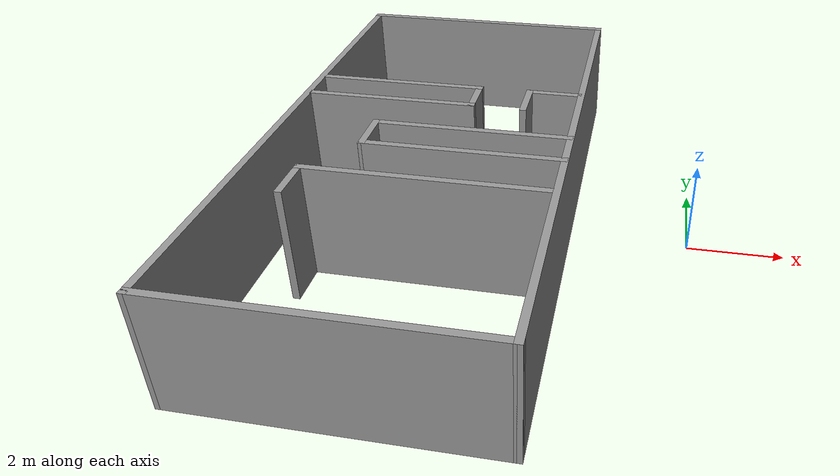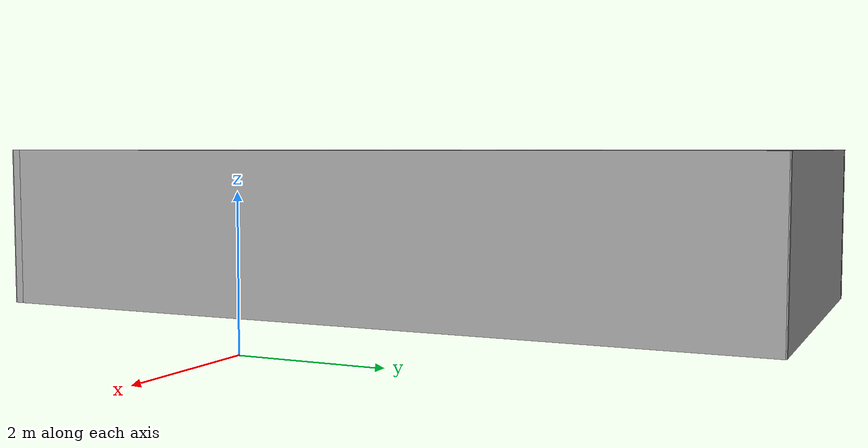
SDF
<?xml version='1.0'?>
<sdf version='1.7'>
  <model name='R2'>
    <pose>-4.38324 -0.010708 0 0 -0 0</pose>
    <link name='Wall_11'>
      <collision name='Wall_11_Collision'>
        <geometry>
          <box>
            <size>1.01745 0.15 2.5</size>
          </box>
        </geometry>
        <pose>0 0 1.25 0 -0 0</pose>
      </collision>
      <visual name='Wall_11_Visual'>
        <pose>0 0 1.25 0 -0 0</pose>
        <geometry>
          <box>
            <size>1.01745 0.15 2.5</size>
          </box>
        </geometry>
        <material>
          <script>
            <uri>file://media/materials/scripts/gazebo.material</uri>
            <name>Gazebo/Grey</name>
          </script>
          <ambient>1 1 1 1</ambient>
        </material>
        <meta>
          <layer>0</layer>
        </meta>
      </visual>
      <pose>-0.536934 1.48475 0 0 -0 -1.5708</pose>
    </link>
    <link name='Wall_15'>
      <collision name='Wall_15_Collision'>
        <geometry>
          <box>
            <size>3.8 0.15 2.5</size>
          </box>
        </geometry>
        <pose>0 0 1.25 0 -0 0</pose>
      </collision>
      <visual name='Wall_15_Visual'>
        <pose>0 0 1.25 0 -0 0</pose>
        <geometry>
          <box>
            <size>3.8 0.15 2.5</size>
          </box>
        </geometry>
        <material>
          <script>
            <uri>file://media/materials/scripts/gazebo.material</uri>
            <name>Gazebo/Grey</name>
          </script>
          <ambient>1 1 1 1</ambient>
        </material>
        <meta>
          <layer>0</layer>
        </meta>
      </visual>
      <pose>-2.36193 1.05102 0 0 -0 3.14159</pose>
    </link>
    <link name='Wall_18'>
      <collision name='Wall_18_Collision'>
        <geometry>
          <box>
            <size>1.02529 0.15 2.5</size>
          </box>
        </geometry>
        <pose>0 0 1.25 0 -0 0</pose>
      </collision>
      <visual name='Wall_18_Visual'>
        <pose>0 0 1.25 0 -0 0</pose>
        <geometry>
          <box>
            <size>1.02529 0.15 2.5</size>
          </box>
        </geometry>
        <material>
          <script>
            <uri>file://media/materials/scripts/gazebo.material</uri>
            <name>Gazebo/Grey</name>
          </script>
          <ambient>1 1 1 1</ambient>
        </material>
        <meta>
          <layer>0</layer>
        </meta>
      </visual>
      <pose>0.61657 1.48341 0 0 -0 -1.5708</pose>
    </link>
    <link name='Wall_20'>
      <collision name='Wall_20_Collision'>
        <geometry>
          <box>
            <size>1.25 0.15 2.5</size>
          </box>
        </geometry>
        <pose>0 0 1.25 0 -0 0</pose>
      </collision>
      <visual name='Wall_20_Visual'>
        <pose>0 0 1.25 0 -0 0</pose>
        <geometry>
          <box>
            <size>1.25 0.15 2.5</size>
          </box>
        </geometry>
        <material>
          <script>
            <uri>file://media/materials/scripts/gazebo.material</uri>
            <name>Gazebo/Grey</name>
          </script>
          <ambient>1 1 1 1</ambient>
        </material>
        <meta>
          <layer>0</layer>
        </meta>
      </visual>
      <pose>1.16657 1.92358 0 0 -0 0</pose>
    </link>
    <link name='Wall_23'>
      <collision name='Wall_23_Collision'>
        <geometry>
          <box>
            <size>1.01538 0.15 2.5</size>
          </box>
        </geometry>
        <pose>0 0 1.25 0 -0 0</pose>
      </collision>
      <visual name='Wall_23_Visual'>
        <pose>0 0 1.25 0 -0 0</pose>
        <geometry>
          <box>
            <size>1.01538 0.15 2.5</size>
          </box>
        </geometry>
        <material>
          <script>
            <uri>file://media/materials/scripts/gazebo.material</uri>
            <name>Gazebo/Grey</name>
          </script>
          <ambient>1 1 1 1</ambient>
        </material>
        <meta>
          <layer>0</layer>
        </meta>
      </visual>
      <pose>-3.20366 -2.53289 0 0 -0 -1.5708</pose>
    </link>
    <link name='Wall_25'>
      <collision name='Wall_25_Collision'>
        <geometry>
          <box>
            <size>5 0.15 2.5</size>
          </box>
        </geometry>
        <pose>0 0 1.25 0 -0 0</pose>
      </collision>
      <visual name='Wall_25_Visual'>
        <pose>0 0 1.25 0 -0 0</pose>
        <geometry>
          <box>
            <size>5 0.15 2.5</size>
          </box>
        </geometry>
        <material>
          <script>
            <uri>file://media/materials/scripts/gazebo.material</uri>
            <name>Gazebo/Grey</name>
          </script>
          <ambient>1 1 1 1</ambient>
        </material>
        <meta>
          <layer>0</layer>
        </meta>
      </visual>
      <pose>-0.778656 -2.10327 0 0 -0 0</pose>
    </link>
    <link name='Wall_28'>
      <collision name='Wall_28_Collision'>
        <geometry>
          <box>
            <size>1.03917 0.15 2.5</size>
          </box>
        </geometry>
        <pose>0 0 1.25 0 -0 0</pose>
      </collision>
      <visual name='Wall_28_Visual'>
        <pose>0 0 1.25 0 -0 0</pose>
        <geometry>
          <box>
            <size>1.03917 0.15 2.5</size>
          </box>
        </geometry>
        <material>
          <script>
            <uri>file://media/materials/scripts/gazebo.material</uri>
            <name>Gazebo/Grey</name>
          </script>
          <ambient>1 1 1 1</ambient>
        </material>
        <meta>
          <layer>0</layer>
        </meta>
      </visual>
      <pose>-2.33554 -0.518695 0 0 -0 -1.56279</pose>
    </link>
    <link name='Wall_3'>
      <collision name='Wall_3_Collision'>
        <geometry>
          <box>
            <size>6.24822 0.15 2.5</size>
          </box>
        </geometry>
        <pose>0 0 1.25 0 -0 0</pose>
      </collision>
      <visual name='Wall_3_Visual'>
        <pose>0 0 1.25 0 -0 0</pose>
        <geometry>
          <box>
            <size>6.24822 0.15 2.5</size>
          </box>
        </geometry>
        <material>
          <script>
            <uri>file://media/materials/scripts/gazebo.material</uri>
            <name>Gazebo/Grey</name>
          </script>
          <ambient>1 1 1 1</ambient>
        </material>
        <meta>
          <layer>0</layer>
        </meta>
      </visual>
      <pose>-1.2591 6.05 0 0 -0 -0.00038</pose>
    </link>
    <link name='Wall_30'>
      <collision name='Wall_30_Collision'>
        <geometry>
          <box>
            <size>4.25 0.15 2.5</size>
          </box>
        </geometry>
        <pose>0 0 1.25 0 -0 0</pose>
      </collision>
      <visual name='Wall_30_Visual'>
        <pose>0 0 1.25 0 -0 0</pose>
        <geometry>
          <box>
            <size>4.25 0.15 2.5</size>
          </box>
        </geometry>
        <material>
          <script>
            <uri>file://media/materials/scripts/gazebo.material</uri>
            <name>Gazebo/Grey</name>
          </script>
          <ambient>1 1 1 1</ambient>
        </material>
        <meta>
          <layer>0</layer>
        </meta>
      </visual>
      <pose>-0.285542 -0.074126 0 0 -0 0</pose>
    </link>
    <link name='Wall_32'>
      <collision name='Wall_32_Collision'>
        <geometry>
          <box>
            <size>4.25 0.15 2.5</size>
          </box>
        </geometry>
        <pose>0 0 1.25 0 -0 0</pose>
      </collision>
      <visual name='Wall_32_Visual'>
        <pose>0 0 1.25 0 -0 0</pose>
        <geometry>
          <box>
            <size>4.25 0.15 2.5</size>
          </box>
        </geometry>
        <material>
          <script>
            <uri>file://media/materials/scripts/gazebo.material</uri>
            <name>Gazebo/Grey</name>
          </script>
          <ambient>1 1 1 1</ambient>
        </material>
        <meta>
          <layer>0</layer>
        </meta>
      </visual>
      <pose>-0.281984 -0.963263 0 0 -0 0</pose>
    </link>
    <link name='Wall_5'>
      <collision name='Wall_5_Collision'>
        <geometry>
          <box>
            <size>12.25 0.15 2.5</size>
          </box>
        </geometry>
        <pose>0 0 1.25 0 -0 0</pose>
      </collision>
      <visual name='Wall_5_Visual'>
        <pose>0 0 1.25 0 -0 0</pose>
        <geometry>
          <box>
            <size>12.25 0.15 2.5</size>
          </box>
        </geometry>
        <material>
          <script>
            <uri>file://media/materials/scripts/gazebo.material</uri>
            <name>Gazebo/Grey</name>
          </script>
          <ambient>1 1 1 1</ambient>
        </material>
        <meta>
          <layer>0</layer>
        </meta>
      </visual>
      <pose>1.79001 -0.001159 0 0 -0 -1.5708</pose>
    </link>
    <link name='Wall_6'>
      <collision name='Wall_6_Collision'>
        <geometry>
          <box>
            <size>6.24822 0.15 2.5</size>
          </box>
        </geometry>
        <pose>0 0 1.25 0 -0 0</pose>
      </collision>
      <visual name='Wall_6_Visual'>
        <pose>0 0 1.25 0 -0 0</pose>
        <geometry>
          <box>
            <size>6.24822 0.15 2.5</size>
          </box>
        </geometry>
        <material>
          <script>
            <uri>file://media/materials/scripts/gazebo.material</uri>
            <name>Gazebo/Grey</name>
          </script>
          <ambient>1 1 1 1</ambient>
        </material>
        <meta>
          <layer>0</layer>
        </meta>
      </visual>
      <pose>-1.2591 -6.05 0 0 -0 3.14121</pose>
    </link>
    <link name='Wall_7'>
      <collision name='Wall_7_Collision'>
        <geometry>
          <box>
            <size>12.25 0.15 2.5</size>
          </box>
        </geometry>
        <pose>0 0 1.25 0 -0 0</pose>
      </collision>
      <visual name='Wall_7_Visual'>
        <pose>0 0 1.25 0 -0 0</pose>
        <geometry>
          <box>
            <size>12.25 0.15 2.5</size>
          </box>
        </geometry>
        <material>
          <script>
            <uri>file://media/materials/scripts/gazebo.material</uri>
            <name>Gazebo/Grey</name>
          </script>
          <ambient>1 1 1 1</ambient>
        </material>
        <meta>
          <layer>0</layer>
        </meta>
      </visual>
      <pose>-4.30821 0.001159 0 0 -0 1.5708</pose>
    </link>
    <link name='Wall_9'>
      <collision name='Wall_9_Collision'>
        <geometry>
          <box>
            <size>3.8 0.15 2.5</size>
          </box>
        </geometry>
        <pose>0 0 1.25 0 -0 0</pose>
      </collision>
      <visual name='Wall_9_Visual'>
        <pose>0 0 1.25 0 -0 0</pose>
        <geometry>
          <box>
            <size>3.8 0.15 2.5</size>
          </box>
        </geometry>
        <material>
          <script>
            <uri>file://media/materials/scripts/gazebo.material</uri>
            <name>Gazebo/Grey</name>
          </script>
          <ambient>1 1 1 1</ambient>
        </material>
        <meta>
          <layer>0</layer>
        </meta>
      </visual>
      <pose>-2.36193 1.91847 0 0 -0 0</pose>
    </link>
    <static>1</static>
  </model>
</sdf>
